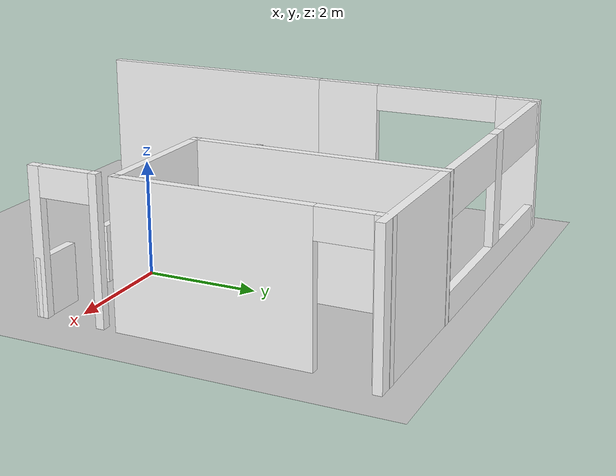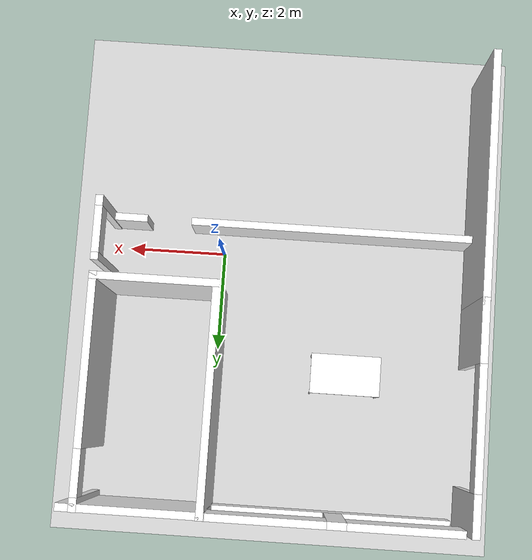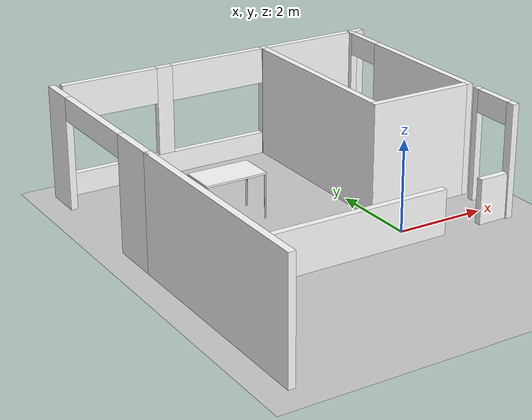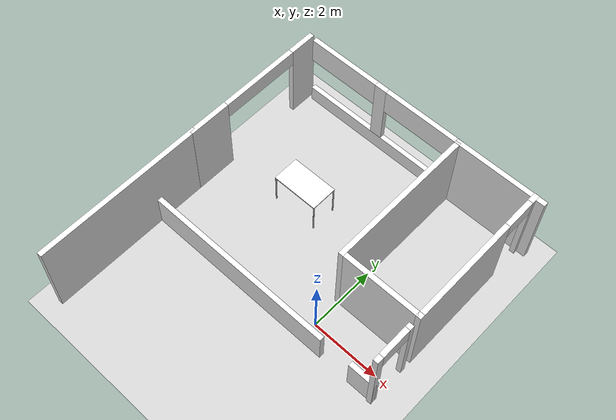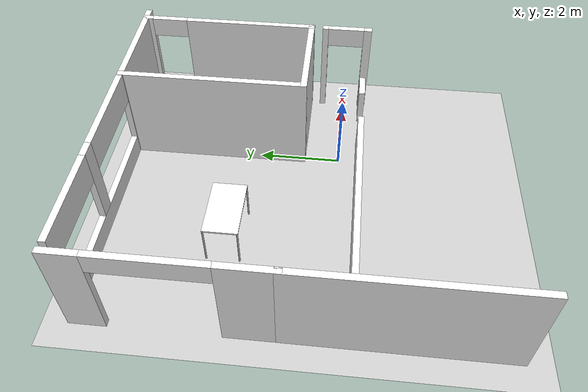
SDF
<sdf version="1.8">
 <world name="bot4House">
  <model name="ground_plane">
   <static>1</static>
   <link name="link">
    <collision name="collision">
     <geometry><plane><normal>0 0 1</normal><size>100 100</size></plane></geometry>
    </collision>
    <visual name="visual"><geometry><plane><normal>0 0 1</normal><size>100 100</size></plane></geometry></visual>
   </link>
  </model>
  <model name="house">
   <link name="Wall_101">
    <pose>-0.05 3.1 0 0 0 -1.5708</pose>
    <visual name="Wall_101_Visual">
     <pose>0 0 1.25 0 -0 0</pose>
     <geometry><box><size>4.5 0.15 2.5</size></box></geometry>
     <material>
      <ambient>1 1 1 1</ambient>
      <diffuse>1 1 1 1</diffuse>
      <specular>0.2 0.2 0.2 1</specular>
      <emissive>0 0 0 1</emissive>
     </material>
    </visual>
    <collision name="Wall_101_Collision">
     <pose>0 0 1.25 0 -0 0</pose>
     <geometry><box><size>4.5 0.15 2.5</size></box></geometry>
     <surface>
      <friction>
       <ode><mu>1</mu><mu2>1</mu2><fdir1>0 0 0</fdir1><slip1>0</slip1><slip2>0</slip2></ode>
       <torsional>
        <coefficient>1</coefficient>
        <patch_radius>0</patch_radius>
        <surface_radius>0</surface_radius>
        <use_patch_radius>1</use_patch_radius>
        <ode><slip>0</slip></ode>
       </torsional>
      </friction>
      <bounce><restitution_coefficient>0</restitution_coefficient><threshold>1e+06</threshold></bounce>
      <contact>
       <collide_without_contact>0</collide_without_contact>
       <collide_without_contact_bitmask>1</collide_without_contact_bitmask>
       <collide_bitmask>1</collide_bitmask>
       <ode>
        <soft_cfm>0</soft_cfm>
        <soft_erp>0.2</soft_erp>
        <kp>1e+13</kp>
        <kd>1</kd>
        <max_vel>0.01</max_vel>
        <min_depth>0</min_depth>
       </ode>
       <bullet>
        <split_impulse>1</split_impulse>
        <split_impulse_penetration_threshold>-0.01</split_impulse_penetration_threshold>
        <soft_cfm>0</soft_cfm>
        <soft_erp>0.2</soft_erp>
        <kp>1e+13</kp>
        <kd>1</kd>
       </bullet>
      </contact>
     </surface>
    </collision>
   </link>
   <link name="Wall_104">
    <pose>2.3 3.1 0 0 -0 1.5708</pose>
    <visual name="Wall_104_Visual_1">
     <pose>2.11625 0 1.25 0 -0 0</pose>
     <geometry><box><size>0.267504 0.15 2.5</size></box></geometry>
     <material>
      <ambient>1 1 1 1</ambient>
      <diffuse>1 1 1 1</diffuse>
      <specular>0.2 0.2 0.2 1</specular>
      <emissive>0 0 0 1</emissive>
     </material>
    </visual>
    <visual name="Wall_104_Visual_2">
     <pose>1.5325 0 2.25 0 -0 0</pose>
     <geometry><box><size>0.9 0.15 0.5</size></box></geometry>
     <material>
      <ambient>1 1 1 1</ambient>
      <diffuse>1 1 1 1</diffuse>
      <specular>0.2 0.2 0.2 1</specular>
      <emissive>0 0 0 1</emissive>
     </material>
    </visual>
    <visual name="Wall_104_Visual_0">
     <pose>-0.583752 0 1.25 0 -0 0</pose>
     <geometry><box><size>3.3325 0.15 2.5</size></box></geometry>
     <material>
      <ambient>1 1 1 1</ambient>
      <diffuse>1 1 1 1</diffuse>
      <specular>0.2 0.2 0.2 1</specular>
      <emissive>0 0 0 1</emissive>
     </material>
    </visual>
    <collision name="Wall_104_Collision_1">
     <pose>2.11625 0 1.25 0 -0 0</pose>
     <geometry><box><size>0.267504 0.15 2.5</size></box></geometry>
     <surface>
      <friction>
       <ode><mu>1</mu><mu2>1</mu2><fdir1>0 0 0</fdir1><slip1>0</slip1><slip2>0</slip2></ode>
       <torsional>
        <coefficient>1</coefficient>
        <patch_radius>0</patch_radius>
        <surface_radius>0</surface_radius>
        <use_patch_radius>1</use_patch_radius>
        <ode><slip>0</slip></ode>
       </torsional>
      </friction>
      <bounce><restitution_coefficient>0</restitution_coefficient><threshold>1e+06</threshold></bounce>
      <contact>
       <collide_without_contact>0</collide_without_contact>
       <collide_without_contact_bitmask>1</collide_without_contact_bitmask>
       <collide_bitmask>1</collide_bitmask>
       <ode>
        <soft_cfm>0</soft_cfm>
        <soft_erp>0.2</soft_erp>
        <kp>1e+13</kp>
        <kd>1</kd>
        <max_vel>0.01</max_vel>
        <min_depth>0</min_depth>
       </ode>
       <bullet>
        <split_impulse>1</split_impulse>
        <split_impulse_penetration_threshold>-0.01</split_impulse_penetration_threshold>
        <soft_cfm>0</soft_cfm>
        <soft_erp>0.2</soft_erp>
        <kp>1e+13</kp>
        <kd>1</kd>
       </bullet>
      </contact>
     </surface>
    </collision>
    <collision name="Wall_104_Collision_2">
     <pose>1.5325 0 2.25 0 -0 0</pose>
     <geometry><box><size>0.9 0.15 0.5</size></box></geometry>
     <surface>
      <friction>
       <ode><mu>1</mu><mu2>1</mu2><fdir1>0 0 0</fdir1><slip1>0</slip1><slip2>0</slip2></ode>
       <torsional>
        <coefficient>1</coefficient>
        <patch_radius>0</patch_radius>
        <surface_radius>0</surface_radius>
        <use_patch_radius>1</use_patch_radius>
        <ode><slip>0</slip></ode>
       </torsional>
      </friction>
      <bounce><restitution_coefficient>0</restitution_coefficient><threshold>1e+06</threshold></bounce>
      <contact>
       <collide_without_contact>0</collide_without_contact>
       <collide_without_contact_bitmask>1</collide_without_contact_bitmask>
       <collide_bitmask>1</collide_bitmask>
       <ode>
        <soft_cfm>0</soft_cfm>
        <soft_erp>0.2</soft_erp>
        <kp>1e+13</kp>
        <kd>1</kd>
        <max_vel>0.01</max_vel>
        <min_depth>0</min_depth>
       </ode>
       <bullet>
        <split_impulse>1</split_impulse>
        <split_impulse_penetration_threshold>-0.01</split_impulse_penetration_threshold>
        <soft_cfm>0</soft_cfm>
        <soft_erp>0.2</soft_erp>
        <kp>1e+13</kp>
        <kd>1</kd>
       </bullet>
      </contact>
     </surface>
    </collision>
    <collision name="Wall_104_Collision_0">
     <pose>-0.583752 0 1.25 0 -0 0</pose>
     <geometry><box><size>3.3325 0.15 2.5</size></box></geometry>
     <surface>
      <friction>
       <ode><mu>1</mu><mu2>1</mu2><fdir1>0 0 0</fdir1><slip1>0</slip1><slip2>0</slip2></ode>
       <torsional>
        <coefficient>1</coefficient>
        <patch_radius>0</patch_radius>
        <surface_radius>0</surface_radius>
        <use_patch_radius>1</use_patch_radius>
        <ode><slip>0</slip></ode>
       </torsional>
      </friction>
      <bounce><restitution_coefficient>0</restitution_coefficient><threshold>1e+06</threshold></bounce>
      <contact>
       <collide_without_contact>0</collide_without_contact>
       <collide_without_contact_bitmask>1</collide_without_contact_bitmask>
       <collide_bitmask>1</collide_bitmask>
       <ode>
        <soft_cfm>0</soft_cfm>
        <soft_erp>0.2</soft_erp>
        <kp>1e+13</kp>
        <kd>1</kd>
        <max_vel>0.01</max_vel>
        <min_depth>0</min_depth>
       </ode>
       <bullet>
        <split_impulse>1</split_impulse>
        <split_impulse_penetration_threshold>-0.01</split_impulse_penetration_threshold>
        <soft_cfm>0</soft_cfm>
        <soft_erp>0.2</soft_erp>
        <kp>1e+13</kp>
        <kd>1</kd>
       </bullet>
      </contact>
     </surface>
    </collision>
   </link>
   <link name="Wall_108">
    <pose>-1.37512 -0.5 0 0 -0 0</pose>
    <visual name="Wall_108_Visual_0">
     <pose>-0.856324 0 0.5 0 -0 0</pose>
     <geometry><box><size>5.78735 0.15 1</size></box></geometry>
     <material>
      <ambient>1 1 1 1</ambient>
      <diffuse>1 1 1 1</diffuse>
      <specular>0.2 0.2 0.2 1</specular>
      <emissive>0 0 0 1</emissive>
     </material>
    </visual>
    <visual name="Wall_108_Visual_1">
     <pose>3.34368 0 0.5 0 -0 0</pose>
     <geometry><box><size>0.812647 0.15 1</size></box></geometry>
     <material>
      <ambient>1 1 1 1</ambient>
      <diffuse>1 1 1 1</diffuse>
      <specular>0.2 0.2 0.2 1</specular>
      <emissive>0 0 0 1</emissive>
     </material>
    </visual>
    <collision name="Wall_108_Collision_1">
     <pose>3.34368 0 0.5 0 -0 0</pose>
     <geometry><box><size>0.812647 0.15 1</size></box></geometry>
     <surface>
      <friction>
       <ode><mu>1</mu><mu2>1</mu2><fdir1>0 0 0</fdir1><slip1>0</slip1><slip2>0</slip2></ode>
       <torsional>
        <coefficient>1</coefficient>
        <patch_radius>0</patch_radius>
        <surface_radius>0</surface_radius>
        <use_patch_radius>1</use_patch_radius>
        <ode><slip>0</slip></ode>
       </torsional>
      </friction>
      <bounce><restitution_coefficient>0</restitution_coefficient><threshold>1e+06</threshold></bounce>
      <contact>
       <collide_without_contact>0</collide_without_contact>
       <collide_without_contact_bitmask>1</collide_without_contact_bitmask>
       <collide_bitmask>1</collide_bitmask>
       <ode>
        <soft_cfm>0</soft_cfm>
        <soft_erp>0.2</soft_erp>
        <kp>1e+13</kp>
        <kd>1</kd>
        <max_vel>0.01</max_vel>
        <min_depth>0</min_depth>
       </ode>
       <bullet>
        <split_impulse>1</split_impulse>
        <split_impulse_penetration_threshold>-0.01</split_impulse_penetration_threshold>
        <soft_cfm>0</soft_cfm>
        <soft_erp>0.2</soft_erp>
        <kp>1e+13</kp>
        <kd>1</kd>
       </bullet>
      </contact>
     </surface>
    </collision>
    <collision name="Wall_108_Collision_0">
     <pose>-0.856324 0 0.5 0 -0 0</pose>
     <geometry><box><size>5.78735 0.15 1</size></box></geometry>
     <surface>
      <friction>
       <ode><mu>1</mu><mu2>1</mu2><fdir1>0 0 0</fdir1><slip1>0</slip1><slip2>0</slip2></ode>
       <torsional>
        <coefficient>1</coefficient>
        <patch_radius>0</patch_radius>
        <surface_radius>0</surface_radius>
        <use_patch_radius>1</use_patch_radius>
        <ode><slip>0</slip></ode>
       </torsional>
      </friction>
      <bounce><restitution_coefficient>0</restitution_coefficient><threshold>1e+06</threshold></bounce>
      <contact>
       <collide_without_contact>0</collide_without_contact>
       <collide_without_contact_bitmask>1</collide_without_contact_bitmask>
       <collide_bitmask>1</collide_bitmask>
       <ode>
        <soft_cfm>0</soft_cfm>
        <soft_erp>0.2</soft_erp>
        <kp>1e+13</kp>
        <kd>1</kd>
        <max_vel>0.01</max_vel>
        <min_depth>0</min_depth>
       </ode>
       <bullet>
        <split_impulse>1</split_impulse>
        <split_impulse_penetration_threshold>-0.01</split_impulse_penetration_threshold>
        <soft_cfm>0</soft_cfm>
        <soft_erp>0.2</soft_erp>
        <kp>1e+13</kp>
        <kd>1</kd>
       </bullet>
      </contact>
     </surface>
    </collision>
   </link>
   <link name="Wall_82">
    <pose>1.25 5.26876 0 0 -0 3.14159</pose>
    <visual name="Wall_82_Visual">
     <pose>0 0 1.25 0 -0 0</pose>
     <geometry><box><size>2.75 0.15 2.5</size></box></geometry>
     <material>
      <ambient>1 1 1 1</ambient>
      <diffuse>1 1 1 1</diffuse>
      <specular>0.2 0.2 0.2 1</specular>
      <emissive>0 0 0 1</emissive>
     </material>
    </visual>
    <collision name="Wall_82_Collision">
     <pose>0 0 1.25 0 -0 0</pose>
     <geometry><box><size>2.75 0.15 2.5</size></box></geometry>
     <surface>
      <friction>
       <ode><mu>1</mu><mu2>1</mu2><fdir1>0 0 0</fdir1><slip1>0</slip1><slip2>0</slip2></ode>
       <torsional>
        <coefficient>1</coefficient>
        <patch_radius>0</patch_radius>
        <surface_radius>0</surface_radius>
        <use_patch_radius>1</use_patch_radius>
        <ode><slip>0</slip></ode>
       </torsional>
      </friction>
      <bounce><restitution_coefficient>0</restitution_coefficient><threshold>1e+06</threshold></bounce>
      <contact>
       <collide_without_contact>0</collide_without_contact>
       <collide_without_contact_bitmask>1</collide_without_contact_bitmask>
       <collide_bitmask>1</collide_bitmask>
       <ode>
        <soft_cfm>0</soft_cfm>
        <soft_erp>0.2</soft_erp>
        <kp>1e+13</kp>
        <kd>1</kd>
        <max_vel>0.01</max_vel>
        <min_depth>0</min_depth>
       </ode>
       <bullet>
        <split_impulse>1</split_impulse>
        <split_impulse_penetration_threshold>-0.01</split_impulse_penetration_threshold>
        <soft_cfm>0</soft_cfm>
        <soft_erp>0.2</soft_erp>
        <kp>1e+13</kp>
        <kd>1</kd>
       </bullet>
      </contact>
     </surface>
    </collision>
   </link>
   <link name="Wall_83">
    <pose>-2.475 5.275 0 0 -0 3.14159</pose>
    <visual name="Wall_83_Visual_2">
     <pose>0.110246 0 1.5 0 -0 0</pose>
     <geometry><box><size>0.37052 0.15 2</size></box></geometry>
     <material>
      <ambient>1 1 1 1</ambient>
      <diffuse>1 1 1 1</diffuse>
      <specular>0.2 0.2 0.2 1</specular>
      <emissive>0 0 0 1</emissive>
     </material>
    </visual>
    <visual name="Wall_83_Visual_6">
     <pose>1.39775 0 2.1 0 -0 0</pose>
     <geometry><box><size>2.20449 0.15 0.8</size></box></geometry>
     <material>
      <ambient>1 1 1 1</ambient>
      <diffuse>1 1 1 1</diffuse>
      <specular>0.2 0.2 0.2 1</specular>
      <emissive>0 0 0 1</emissive>
     </material>
    </visual>
    <visual name="Wall_83_Visual_3">
     <pose>0.110246 0 1.5 0 -0 0</pose>
     <geometry><box><size>0.37052 0.15 2</size></box></geometry>
     <material>
      <ambient>1 1 1 1</ambient>
      <diffuse>1 1 1 1</diffuse>
      <specular>0.2 0.2 0.2 1</specular>
      <emissive>0 0 0 1</emissive>
     </material>
    </visual>
    <visual name="Wall_83_Visual_1">
     <pose>0.080993 0 0.25 0 -0 0</pose>
     <geometry><box><size>4.83801 0.15 0.5</size></box></geometry>
     <material>
      <ambient>1 1 1 1</ambient>
      <diffuse>1 1 1 1</diffuse>
      <specular>0.2 0.2 0.2 1</specular>
      <emissive>0 0 0 1</emissive>
     </material>
    </visual>
    <visual name="Wall_83_Visual_4">
     <pose>-1.20651 0 2.1 0 -0 0</pose>
     <geometry><box><size>2.263 0.15 0.8</size></box></geometry>
     <material>
      <ambient>1 1 1 1</ambient>
      <diffuse>1 1 1 1</diffuse>
      <specular>0.2 0.2 0.2 1</specular>
      <emissive>0 0 0 1</emissive>
     </material>
    </visual>
    <visual name="Wall_83_Visual_5">
     <pose>1.39775 0 2.1 0 -0 0</pose>
     <geometry><box><size>2.20449 0.15 0.8</size></box></geometry>
     <material>
      <ambient>1 1 1 1</ambient>
      <diffuse>1 1 1 1</diffuse>
      <specular>0.2 0.2 0.2 1</specular>
      <emissive>0 0 0 1</emissive>
     </material>
    </visual>
    <visual name="Wall_83_Visual_0">
     <pose>-2.41901 0 1.25 0 -0 0</pose>
     <geometry><box><size>0.161986 0.15 2.5</size></box></geometry>
     <material>
      <ambient>1 1 1 1</ambient>
      <diffuse>1 1 1 1</diffuse>
      <specular>0.2 0.2 0.2 1</specular>
      <emissive>0 0 0 1</emissive>
     </material>
    </visual>
    <collision name="Wall_83_Collision_4">
     <pose>-1.20651 0 2.1 0 -0 0</pose>
     <geometry><box><size>2.263 0.15 0.8</size></box></geometry>
     <surface>
      <friction>
       <ode><mu>1</mu><mu2>1</mu2><fdir1>0 0 0</fdir1><slip1>0</slip1><slip2>0</slip2></ode>
       <torsional>
        <coefficient>1</coefficient>
        <patch_radius>0</patch_radius>
        <surface_radius>0</surface_radius>
        <use_patch_radius>1</use_patch_radius>
        <ode><slip>0</slip></ode>
       </torsional>
      </friction>
      <bounce><restitution_coefficient>0</restitution_coefficient><threshold>1e+06</threshold></bounce>
      <contact>
       <collide_without_contact>0</collide_without_contact>
       <collide_without_contact_bitmask>1</collide_without_contact_bitmask>
       <collide_bitmask>1</collide_bitmask>
       <ode>
        <soft_cfm>0</soft_cfm>
        <soft_erp>0.2</soft_erp>
        <kp>1e+13</kp>
        <kd>1</kd>
        <max_vel>0.01</max_vel>
        <min_depth>0</min_depth>
       </ode>
       <bullet>
        <split_impulse>1</split_impulse>
        <split_impulse_penetration_threshold>-0.01</split_impulse_penetration_threshold>
        <soft_cfm>0</soft_cfm>
        <soft_erp>0.2</soft_erp>
        <kp>1e+13</kp>
        <kd>1</kd>
       </bullet>
      </contact>
     </surface>
    </collision>
    <collision name="Wall_83_Collision_2">
     <pose>0.110246 0 1.5 0 -0 0</pose>
     <geometry><box><size>0.37052 0.15 2</size></box></geometry>
     <surface>
      <friction>
       <ode><mu>1</mu><mu2>1</mu2><fdir1>0 0 0</fdir1><slip1>0</slip1><slip2>0</slip2></ode>
       <torsional>
        <coefficient>1</coefficient>
        <patch_radius>0</patch_radius>
        <surface_radius>0</surface_radius>
        <use_patch_radius>1</use_patch_radius>
        <ode><slip>0</slip></ode>
       </torsional>
      </friction>
      <bounce><restitution_coefficient>0</restitution_coefficient><threshold>1e+06</threshold></bounce>
      <contact>
       <collide_without_contact>0</collide_without_contact>
       <collide_without_contact_bitmask>1</collide_without_contact_bitmask>
       <collide_bitmask>1</collide_bitmask>
       <ode>
        <soft_cfm>0</soft_cfm>
        <soft_erp>0.2</soft_erp>
        <kp>1e+13</kp>
        <kd>1</kd>
        <max_vel>0.01</max_vel>
        <min_depth>0</min_depth>
       </ode>
       <bullet>
        <split_impulse>1</split_impulse>
        <split_impulse_penetration_threshold>-0.01</split_impulse_penetration_threshold>
        <soft_cfm>0</soft_cfm>
        <soft_erp>0.2</soft_erp>
        <kp>1e+13</kp>
        <kd>1</kd>
       </bullet>
      </contact>
     </surface>
    </collision>
    <collision name="Wall_83_Collision_6">
     <pose>1.39775 0 2.1 0 -0 0</pose>
     <geometry><box><size>2.20449 0.15 0.8</size></box></geometry>
     <surface>
      <friction>
       <ode><mu>1</mu><mu2>1</mu2><fdir1>0 0 0</fdir1><slip1>0</slip1><slip2>0</slip2></ode>
       <torsional>
        <coefficient>1</coefficient>
        <patch_radius>0</patch_radius>
        <surface_radius>0</surface_radius>
        <use_patch_radius>1</use_patch_radius>
        <ode><slip>0</slip></ode>
       </torsional>
      </friction>
      <bounce><restitution_coefficient>0</restitution_coefficient><threshold>1e+06</threshold></bounce>
      <contact>
       <collide_without_contact>0</collide_without_contact>
       <collide_without_contact_bitmask>1</collide_without_contact_bitmask>
       <collide_bitmask>1</collide_bitmask>
       <ode>
        <soft_cfm>0</soft_cfm>
        <soft_erp>0.2</soft_erp>
        <kp>1e+13</kp>
        <kd>1</kd>
        <max_vel>0.01</max_vel>
        <min_depth>0</min_depth>
       </ode>
       <bullet>
        <split_impulse>1</split_impulse>
        <split_impulse_penetration_threshold>-0.01</split_impulse_penetration_threshold>
        <soft_cfm>0</soft_cfm>
        <soft_erp>0.2</soft_erp>
        <kp>1e+13</kp>
        <kd>1</kd>
       </bullet>
      </contact>
     </surface>
    </collision>
    <collision name="Wall_83_Collision_0">
     <pose>-2.41901 0 1.25 0 -0 0</pose>
     <geometry><box><size>0.161986 0.15 2.5</size></box></geometry>
     <surface>
      <friction>
       <ode><mu>1</mu><mu2>1</mu2><fdir1>0 0 0</fdir1><slip1>0</slip1><slip2>0</slip2></ode>
       <torsional>
        <coefficient>1</coefficient>
        <patch_radius>0</patch_radius>
        <surface_radius>0</surface_radius>
        <use_patch_radius>1</use_patch_radius>
        <ode><slip>0</slip></ode>
       </torsional>
      </friction>
      <bounce><restitution_coefficient>0</restitution_coefficient><threshold>1e+06</threshold></bounce>
      <contact>
       <collide_without_contact>0</collide_without_contact>
       <collide_without_contact_bitmask>1</collide_without_contact_bitmask>
       <collide_bitmask>1</collide_bitmask>
       <ode>
        <soft_cfm>0</soft_cfm>
        <soft_erp>0.2</soft_erp>
        <kp>1e+13</kp>
        <kd>1</kd>
        <max_vel>0.01</max_vel>
        <min_depth>0</min_depth>
       </ode>
       <bullet>
        <split_impulse>1</split_impulse>
        <split_impulse_penetration_threshold>-0.01</split_impulse_penetration_threshold>
        <soft_cfm>0</soft_cfm>
        <soft_erp>0.2</soft_erp>
        <kp>1e+13</kp>
        <kd>1</kd>
       </bullet>
      </contact>
     </surface>
    </collision>
    <collision name="Wall_83_Collision_1">
     <pose>0.080993 0 0.25 0 -0 0</pose>
     <geometry><box><size>4.83801 0.15 0.5</size></box></geometry>
     <surface>
      <friction>
       <ode><mu>1</mu><mu2>1</mu2><fdir1>0 0 0</fdir1><slip1>0</slip1><slip2>0</slip2></ode>
       <torsional>
        <coefficient>1</coefficient>
        <patch_radius>0</patch_radius>
        <surface_radius>0</surface_radius>
        <use_patch_radius>1</use_patch_radius>
        <ode><slip>0</slip></ode>
       </torsional>
      </friction>
      <bounce><restitution_coefficient>0</restitution_coefficient><threshold>1e+06</threshold></bounce>
      <contact>
       <collide_without_contact>0</collide_without_contact>
       <collide_without_contact_bitmask>1</collide_without_contact_bitmask>
       <collide_bitmask>1</collide_bitmask>
       <ode>
        <soft_cfm>0</soft_cfm>
        <soft_erp>0.2</soft_erp>
        <kp>1e+13</kp>
        <kd>1</kd>
        <max_vel>0.01</max_vel>
        <min_depth>0</min_depth>
       </ode>
       <bullet>
        <split_impulse>1</split_impulse>
        <split_impulse_penetration_threshold>-0.01</split_impulse_penetration_threshold>
        <soft_cfm>0</soft_cfm>
        <soft_erp>0.2</soft_erp>
        <kp>1e+13</kp>
        <kd>1</kd>
       </bullet>
      </contact>
     </surface>
    </collision>
    <collision name="Wall_83_Collision_3">
     <pose>0.110246 0 1.5 0 -0 0</pose>
     <geometry><box><size>0.37052 0.15 2</size></box></geometry>
     <surface>
      <friction>
       <ode><mu>1</mu><mu2>1</mu2><fdir1>0 0 0</fdir1><slip1>0</slip1><slip2>0</slip2></ode>
       <torsional>
        <coefficient>1</coefficient>
        <patch_radius>0</patch_radius>
        <surface_radius>0</surface_radius>
        <use_patch_radius>1</use_patch_radius>
        <ode><slip>0</slip></ode>
       </torsional>
      </friction>
      <bounce><restitution_coefficient>0</restitution_coefficient><threshold>1e+06</threshold></bounce>
      <contact>
       <collide_without_contact>0</collide_without_contact>
       <collide_without_contact_bitmask>1</collide_without_contact_bitmask>
       <collide_bitmask>1</collide_bitmask>
       <ode>
        <soft_cfm>0</soft_cfm>
        <soft_erp>0.2</soft_erp>
        <kp>1e+13</kp>
        <kd>1</kd>
        <max_vel>0.01</max_vel>
        <min_depth>0</min_depth>
       </ode>
       <bullet>
        <split_impulse>1</split_impulse>
        <split_impulse_penetration_threshold>-0.01</split_impulse_penetration_threshold>
        <soft_cfm>0</soft_cfm>
        <soft_erp>0.2</soft_erp>
        <kp>1e+13</kp>
        <kd>1</kd>
       </bullet>
      </contact>
     </surface>
    </collision>
    <collision name="Wall_83_Collision_5">
     <pose>1.39775 0 2.1 0 -0 0</pose>
     <geometry><box><size>2.20449 0.15 0.8</size></box></geometry>
     <surface>
      <friction>
       <ode><mu>1</mu><mu2>1</mu2><fdir1>0 0 0</fdir1><slip1>0</slip1><slip2>0</slip2></ode>
       <torsional>
        <coefficient>1</coefficient>
        <patch_radius>0</patch_radius>
        <surface_radius>0</surface_radius>
        <use_patch_radius>1</use_patch_radius>
        <ode><slip>0</slip></ode>
       </torsional>
      </friction>
      <bounce><restitution_coefficient>0</restitution_coefficient><threshold>1e+06</threshold></bounce>
      <contact>
       <collide_without_contact>0</collide_without_contact>
       <collide_without_contact_bitmask>1</collide_without_contact_bitmask>
       <collide_bitmask>1</collide_bitmask>
       <ode>
        <soft_cfm>0</soft_cfm>
        <soft_erp>0.2</soft_erp>
        <kp>1e+13</kp>
        <kd>1</kd>
        <max_vel>0.01</max_vel>
        <min_depth>0</min_depth>
       </ode>
       <bullet>
        <split_impulse>1</split_impulse>
        <split_impulse_penetration_threshold>-0.01</split_impulse_penetration_threshold>
        <soft_cfm>0</soft_cfm>
        <soft_erp>0.2</soft_erp>
        <kp>1e+13</kp>
        <kd>1</kd>
       </bullet>
      </contact>
     </surface>
    </collision>
   </link>
   <link name="Wall_88">
    <pose>-5.15151 -1.49625 0 0 -0 1.5708</pose>
    <visual name="Wall_88_Visual">
     <pose>0 0 1.25 0 -0 0</pose>
     <geometry><box><size>5 0.15 2.5</size></box></geometry>
     <material>
      <ambient>1 1 1 1</ambient>
      <diffuse>1 1 1 1</diffuse>
      <specular>0.2 0.2 0.2 1</specular>
      <emissive>0 0 0 1</emissive>
     </material>
    </visual>
    <collision name="Wall_88_Collision">
     <pose>0 0 1.25 0 -0 0</pose>
     <geometry><box><size>5 0.15 2.5</size></box></geometry>
     <surface>
      <friction>
       <ode><mu>1</mu><mu2>1</mu2><fdir1>0 0 0</fdir1><slip1>0</slip1><slip2>0</slip2></ode>
       <torsional>
        <coefficient>1</coefficient>
        <patch_radius>0</patch_radius>
        <surface_radius>0</surface_radius>
        <use_patch_radius>1</use_patch_radius>
        <ode><slip>0</slip></ode>
       </torsional>
      </friction>
      <bounce><restitution_coefficient>0</restitution_coefficient><threshold>1e+06</threshold></bounce>
      <contact>
       <collide_without_contact>0</collide_without_contact>
       <collide_without_contact_bitmask>1</collide_without_contact_bitmask>
       <collide_bitmask>1</collide_bitmask>
       <ode>
        <soft_cfm>0</soft_cfm>
        <soft_erp>0.2</soft_erp>
        <kp>1e+13</kp>
        <kd>1</kd>
        <max_vel>0.01</max_vel>
        <min_depth>0</min_depth>
       </ode>
       <bullet>
        <split_impulse>1</split_impulse>
        <split_impulse_penetration_threshold>-0.01</split_impulse_penetration_threshold>
        <soft_cfm>0</soft_cfm>
        <soft_erp>0.2</soft_erp>
        <kp>1e+13</kp>
        <kd>1</kd>
       </bullet>
      </contact>
     </surface>
    </collision>
   </link>
   <link name="Wall_90">
    <pose>1.125 0.925 0 0 -0 0</pose>
    <visual name="Wall_90_Visual">
     <pose>0 0 1.25 0 -0 0</pose>
     <geometry><box><size>2.5 0.15 2.5</size></box></geometry>
     <material>
      <ambient>1 1 1 1</ambient>
      <diffuse>1 1 1 1</diffuse>
      <specular>0.2 0.2 0.2 1</specular>
      <emissive>0 0 0 1</emissive>
     </material>
    </visual>
    <collision name="Wall_90_Collision">
     <pose>0 0 1.25 0 -0 0</pose>
     <geometry><box><size>2.5 0.15 2.5</size></box></geometry>
     <surface>
      <friction>
       <ode><mu>1</mu><mu2>1</mu2><fdir1>0 0 0</fdir1><slip1>0</slip1><slip2>0</slip2></ode>
       <torsional>
        <coefficient>1</coefficient>
        <patch_radius>0</patch_radius>
        <surface_radius>0</surface_radius>
        <use_patch_radius>1</use_patch_radius>
        <ode><slip>0</slip></ode>
       </torsional>
      </friction>
      <bounce><restitution_coefficient>0</restitution_coefficient><threshold>1e+06</threshold></bounce>
      <contact>
       <collide_without_contact>0</collide_without_contact>
       <collide_without_contact_bitmask>1</collide_without_contact_bitmask>
       <collide_bitmask>1</collide_bitmask>
       <ode>
        <soft_cfm>0</soft_cfm>
        <soft_erp>0.2</soft_erp>
        <kp>1e+13</kp>
        <kd>1</kd>
        <max_vel>0.01</max_vel>
        <min_depth>0</min_depth>
       </ode>
       <bullet>
        <split_impulse>1</split_impulse>
        <split_impulse_penetration_threshold>-0.01</split_impulse_penetration_threshold>
        <soft_cfm>0</soft_cfm>
        <soft_erp>0.2</soft_erp>
        <kp>1e+13</kp>
        <kd>1</kd>
       </bullet>
      </contact>
     </surface>
    </collision>
   </link>
   <link name="Wall_91">
    <pose>2.29994 0.01 0 0 0 -1.57091</pose>
    <visual name="Wall_91_Visual_0">
     <pose>-0.551501 0 1.25 0 -0 0</pose>
     <geometry><box><size>0.146998 0.15 2.5</size></box></geometry>
     <material>
      <ambient>1 1 1 1</ambient>
      <diffuse>1 1 1 1</diffuse>
      <specular>0.2 0.2 0.2 1</specular>
      <emissive>0 0 0 1</emissive>
     </material>
    </visual>
    <visual name="Wall_91_Visual_2">
     <pose>-0.028002 0 2.25 0 -0 0</pose>
     <geometry><box><size>0.9 0.15 0.5</size></box></geometry>
     <material>
      <ambient>1 1 1 1</ambient>
      <diffuse>1 1 1 1</diffuse>
      <specular>0.2 0.2 0.2 1</specular>
      <emissive>0 0 0 1</emissive>
     </material>
    </visual>
    <visual name="Wall_91_Visual_1">
     <pose>0.523499 0 1.25 0 -0 0</pose>
     <geometry><box><size>0.203002 0.15 2.5</size></box></geometry>
     <material>
      <ambient>1 1 1 1</ambient>
      <diffuse>1 1 1 1</diffuse>
      <specular>0.2 0.2 0.2 1</specular>
      <emissive>0 0 0 1</emissive>
     </material>
    </visual>
    <collision name="Wall_91_Collision_0">
     <pose>-0.551501 0 1.25 0 -0 0</pose>
     <geometry><box><size>0.146998 0.15 2.5</size></box></geometry>
     <surface>
      <friction>
       <ode><mu>1</mu><mu2>1</mu2><fdir1>0 0 0</fdir1><slip1>0</slip1><slip2>0</slip2></ode>
       <torsional>
        <coefficient>1</coefficient>
        <patch_radius>0</patch_radius>
        <surface_radius>0</surface_radius>
        <use_patch_radius>1</use_patch_radius>
        <ode><slip>0</slip></ode>
       </torsional>
      </friction>
      <bounce><restitution_coefficient>0</restitution_coefficient><threshold>1e+06</threshold></bounce>
      <contact>
       <collide_without_contact>0</collide_without_contact>
       <collide_without_contact_bitmask>1</collide_without_contact_bitmask>
       <collide_bitmask>1</collide_bitmask>
       <ode>
        <soft_cfm>0</soft_cfm>
        <soft_erp>0.2</soft_erp>
        <kp>1e+13</kp>
        <kd>1</kd>
        <max_vel>0.01</max_vel>
        <min_depth>0</min_depth>
       </ode>
       <bullet>
        <split_impulse>1</split_impulse>
        <split_impulse_penetration_threshold>-0.01</split_impulse_penetration_threshold>
        <soft_cfm>0</soft_cfm>
        <soft_erp>0.2</soft_erp>
        <kp>1e+13</kp>
        <kd>1</kd>
       </bullet>
      </contact>
     </surface>
    </collision>
    <collision name="Wall_91_Collision_1">
     <pose>0.523499 0 1.25 0 -0 0</pose>
     <geometry><box><size>0.203002 0.15 2.5</size></box></geometry>
     <surface>
      <friction>
       <ode><mu>1</mu><mu2>1</mu2><fdir1>0 0 0</fdir1><slip1>0</slip1><slip2>0</slip2></ode>
       <torsional>
        <coefficient>1</coefficient>
        <patch_radius>0</patch_radius>
        <surface_radius>0</surface_radius>
        <use_patch_radius>1</use_patch_radius>
        <ode><slip>0</slip></ode>
       </torsional>
      </friction>
      <bounce><restitution_coefficient>0</restitution_coefficient><threshold>1e+06</threshold></bounce>
      <contact>
       <collide_without_contact>0</collide_without_contact>
       <collide_without_contact_bitmask>1</collide_without_contact_bitmask>
       <collide_bitmask>1</collide_bitmask>
       <ode>
        <soft_cfm>0</soft_cfm>
        <soft_erp>0.2</soft_erp>
        <kp>1e+13</kp>
        <kd>1</kd>
        <max_vel>0.01</max_vel>
        <min_depth>0</min_depth>
       </ode>
       <bullet>
        <split_impulse>1</split_impulse>
        <split_impulse_penetration_threshold>-0.01</split_impulse_penetration_threshold>
        <soft_cfm>0</soft_cfm>
        <soft_erp>0.2</soft_erp>
        <kp>1e+13</kp>
        <kd>1</kd>
       </bullet>
      </contact>
     </surface>
    </collision>
    <collision name="Wall_91_Collision_2">
     <pose>-0.028002 0 2.25 0 -0 0</pose>
     <geometry><box><size>0.9 0.15 0.5</size></box></geometry>
     <surface>
      <friction>
       <ode><mu>1</mu><mu2>1</mu2><fdir1>0 0 0</fdir1><slip1>0</slip1><slip2>0</slip2></ode>
       <torsional>
        <coefficient>1</coefficient>
        <patch_radius>0</patch_radius>
        <surface_radius>0</surface_radius>
        <use_patch_radius>1</use_patch_radius>
        <ode><slip>0</slip></ode>
       </torsional>
      </friction>
      <bounce><restitution_coefficient>0</restitution_coefficient><threshold>1e+06</threshold></bounce>
      <contact>
       <collide_without_contact>0</collide_without_contact>
       <collide_without_contact_bitmask>1</collide_without_contact_bitmask>
       <collide_bitmask>1</collide_bitmask>
       <ode>
        <soft_cfm>0</soft_cfm>
        <soft_erp>0.2</soft_erp>
        <kp>1e+13</kp>
        <kd>1</kd>
        <max_vel>0.01</max_vel>
        <min_depth>0</min_depth>
       </ode>
       <bullet>
        <split_impulse>1</split_impulse>
        <split_impulse_penetration_threshold>-0.01</split_impulse_penetration_threshold>
        <soft_cfm>0</soft_cfm>
        <soft_erp>0.2</soft_erp>
        <kp>1e+13</kp>
        <kd>1</kd>
       </bullet>
      </contact>
     </surface>
    </collision>
   </link>
   <link name="Wall_99">
    <pose>-5.15 3.1 0 0 -0 1.5708</pose>
    <visual name="Wall_99_Visual_0">
     <pose>-1.62116 0 1.25 0 -0 0</pose>
     <geometry><box><size>1.25768 0.15 2.5</size></box></geometry>
     <material>
      <ambient>1 1 1 1</ambient>
      <diffuse>1 1 1 1</diffuse>
      <specular>0.2 0.2 0.2 1</specular>
      <emissive>0 0 0 1</emissive>
     </material>
    </visual>
    <visual name="Wall_99_Visual_2">
     <pose>0.215786 0 2.25 0 -0 0</pose>
     <geometry><box><size>2.41621 0.15 0.5</size></box></geometry>
     <material>
      <ambient>1 1 1 1</ambient>
      <diffuse>1 1 1 1</diffuse>
      <specular>0.2 0.2 0.2 1</specular>
      <emissive>0 0 0 1</emissive>
     </material>
    </visual>
    <visual name="Wall_99_Visual_1">
     <pose>1.83695 0 1.25 0 -0 0</pose>
     <geometry><box><size>0.826108 0.15 2.5</size></box></geometry>
     <material>
      <ambient>1 1 1 1</ambient>
      <diffuse>1 1 1 1</diffuse>
      <specular>0.2 0.2 0.2 1</specular>
      <emissive>0 0 0 1</emissive>
     </material>
    </visual>
    <collision name="Wall_99_Collision_0">
     <pose>-1.62116 0 1.25 0 -0 0</pose>
     <geometry><box><size>1.25768 0.15 2.5</size></box></geometry>
     <surface>
      <friction>
       <ode><mu>1</mu><mu2>1</mu2><fdir1>0 0 0</fdir1><slip1>0</slip1><slip2>0</slip2></ode>
       <torsional>
        <coefficient>1</coefficient>
        <patch_radius>0</patch_radius>
        <surface_radius>0</surface_radius>
        <use_patch_radius>1</use_patch_radius>
        <ode><slip>0</slip></ode>
       </torsional>
      </friction>
      <bounce><restitution_coefficient>0</restitution_coefficient><threshold>1e+06</threshold></bounce>
      <contact>
       <collide_without_contact>0</collide_without_contact>
       <collide_without_contact_bitmask>1</collide_without_contact_bitmask>
       <collide_bitmask>1</collide_bitmask>
       <ode>
        <soft_cfm>0</soft_cfm>
        <soft_erp>0.2</soft_erp>
        <kp>1e+13</kp>
        <kd>1</kd>
        <max_vel>0.01</max_vel>
        <min_depth>0</min_depth>
       </ode>
       <bullet>
        <split_impulse>1</split_impulse>
        <split_impulse_penetration_threshold>-0.01</split_impulse_penetration_threshold>
        <soft_cfm>0</soft_cfm>
        <soft_erp>0.2</soft_erp>
        <kp>1e+13</kp>
        <kd>1</kd>
       </bullet>
      </contact>
     </surface>
    </collision>
    <collision name="Wall_99_Collision_1">
     <pose>1.83695 0 1.25 0 -0 0</pose>
     <geometry><box><size>0.826108 0.15 2.5</size></box></geometry>
     <surface>
      <friction>
       <ode><mu>1</mu><mu2>1</mu2><fdir1>0 0 0</fdir1><slip1>0</slip1><slip2>0</slip2></ode>
       <torsional>
        <coefficient>1</coefficient>
        <patch_radius>0</patch_radius>
        <surface_radius>0</surface_radius>
        <use_patch_radius>1</use_patch_radius>
        <ode><slip>0</slip></ode>
       </torsional>
      </friction>
      <bounce><restitution_coefficient>0</restitution_coefficient><threshold>1e+06</threshold></bounce>
      <contact>
       <collide_without_contact>0</collide_without_contact>
       <collide_without_contact_bitmask>1</collide_without_contact_bitmask>
       <collide_bitmask>1</collide_bitmask>
       <ode>
        <soft_cfm>0</soft_cfm>
        <soft_erp>0.2</soft_erp>
        <kp>1e+13</kp>
        <kd>1</kd>
        <max_vel>0.01</max_vel>
        <min_depth>0</min_depth>
       </ode>
       <bullet>
        <split_impulse>1</split_impulse>
        <split_impulse_penetration_threshold>-0.01</split_impulse_penetration_threshold>
        <soft_cfm>0</soft_cfm>
        <soft_erp>0.2</soft_erp>
        <kp>1e+13</kp>
        <kd>1</kd>
       </bullet>
      </contact>
     </surface>
    </collision>
    <collision name="Wall_99_Collision_2">
     <pose>0.215786 0 2.25 0 -0 0</pose>
     <geometry><box><size>2.41621 0.15 0.5</size></box></geometry>
     <surface>
      <friction>
       <ode><mu>1</mu><mu2>1</mu2><fdir1>0 0 0</fdir1><slip1>0</slip1><slip2>0</slip2></ode>
       <torsional>
        <coefficient>1</coefficient>
        <patch_radius>0</patch_radius>
        <surface_radius>0</surface_radius>
        <use_patch_radius>1</use_patch_radius>
        <ode><slip>0</slip></ode>
       </torsional>
      </friction>
      <bounce><restitution_coefficient>0</restitution_coefficient><threshold>1e+06</threshold></bounce>
      <contact>
       <collide_without_contact>0</collide_without_contact>
       <collide_without_contact_bitmask>1</collide_without_contact_bitmask>
       <collide_bitmask>1</collide_bitmask>
       <ode>
        <soft_cfm>0</soft_cfm>
        <soft_erp>0.2</soft_erp>
        <kp>1e+13</kp>
        <kd>1</kd>
        <max_vel>0.01</max_vel>
        <min_depth>0</min_depth>
       </ode>
       <bullet>
        <split_impulse>1</split_impulse>
        <split_impulse_penetration_threshold>-0.01</split_impulse_penetration_threshold>
        <soft_cfm>0</soft_cfm>
        <soft_erp>0.2</soft_erp>
        <kp>1e+13</kp>
        <kd>1</kd>
       </bullet>
      </contact>
     </surface>
    </collision>
   </link>
   <model name="table">
    <static>0</static>
    <link name="link">
     <collision name="surface">
      <pose>0 0 1 0 -0 0</pose>
      <geometry><box><size>1.5 0.8 0.03</size></box></geometry>
      <surface><friction><ode><mu>0.6</mu><mu2>0.6</mu2></ode></friction></surface>
     </collision>
     <visual name="visual1">
      <pose>0 0 1 0 -0 0</pose>
      <geometry><box><size>1.4 0.8 0.04</size></box></geometry>
      <material>
       <ambient>1 1 1 1</ambient>
       <diffuse>1 1 1 1</diffuse>
       <specular>0.2 0.2 0.2 1</specular>
       <emissive>0 0 0 1</emissive>
      </material>
     </visual>
     <collision name="front_left_leg">
      <pose>0.68 0.38 0.5 0 -0 0</pose>
      <geometry><cylinder><radius>0.02</radius><length>1</length></cylinder></geometry>
     </collision>
     <visual name="front_left_leg">
      <pose>0.68 0.38 0.5 0 -0 0</pose>
      <geometry><cylinder><radius>0.02</radius><length>1</length></cylinder></geometry>
      <material>
       <ambient>0.3 0.3 0.3 1.0</ambient>
       <diffuse>0.7 0.7 0.7 1.0</diffuse>
       <specular>0.01 0.01 0.01 1.0</specular>
      </material>
     </visual>
     <collision name="front_right_leg">
      <pose>0.68 -0.38 0.5 0 -0 0</pose>
      <geometry><cylinder><radius>0.02</radius><length>1</length></cylinder></geometry>
     </collision>
     <visual name="front_right_leg">
      <pose>0.68 -0.38 0.5 0 -0 0</pose>
      <geometry><cylinder><radius>0.02</radius><length>1</length></cylinder></geometry>
      <material>
       <ambient>0.3 0.3 0.3 1.0</ambient>
       <diffuse>0.7 0.7 0.7 1.0</diffuse>
       <specular>0.01 0.01 0.01 1.0</specular>
      </material>
     </visual>
     <collision name="back_right_leg">
      <pose>-0.68 -0.38 0.5 0 -0 0</pose>
      <geometry><cylinder><radius>0.02</radius><length>1</length></cylinder></geometry>
     </collision>
     <visual name="back_right_leg">
      <pose>-0.68 -0.38 0.5 0 -0 0</pose>
      <geometry><cylinder><radius>0.02</radius><length>1</length></cylinder></geometry>
      <material>
       <ambient>0.3 0.3 0.3 1.0</ambient>
       <diffuse>0.7 0.7 0.7 1.0</diffuse>
       <specular>0.01 0.01 0.01 1.0</specular>
      </material>
     </visual>
     <collision name="back_left_leg">
      <pose>-0.68 0.38 0.5 0 -0 0</pose>
      <geometry><cylinder><radius>0.02</radius><length>1</length></cylinder></geometry>
     </collision>
     <visual name="back_left_leg">
      <pose>-0.68 0.38 0.5 0 -0 0</pose>
      <geometry><cylinder><radius>0.02</radius><length>1</length></cylinder></geometry>
      <material>
       <ambient>0.3 0.3 0.3 1.0</ambient>
       <diffuse>0.7 0.7 0.7 1.0</diffuse>
       <specular>0.01 0.01 0.01 1.0</specular>
      </material>
     </visual>
    </link>
    <pose>-2.65728 2.42376 0 0 -0 0</pose>
   </model>
   <static>1</static>
  </model>
 </world>
</sdf>
